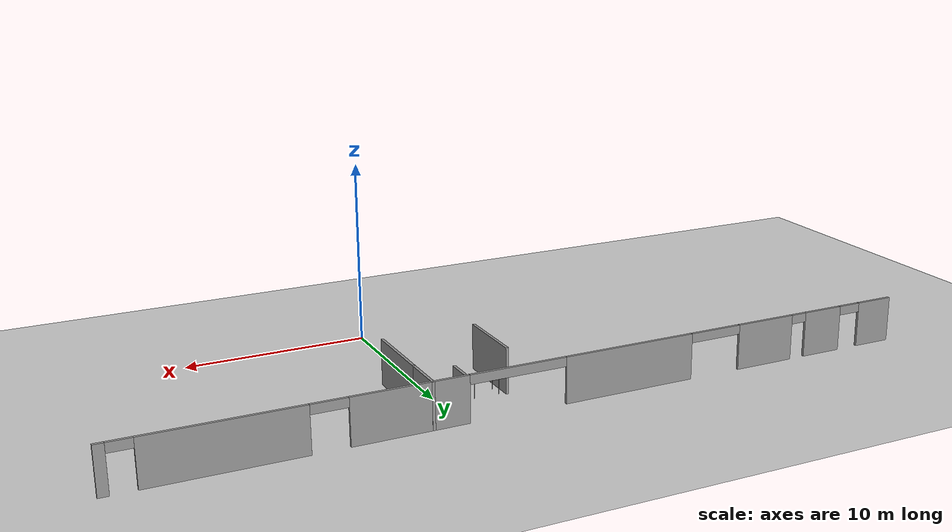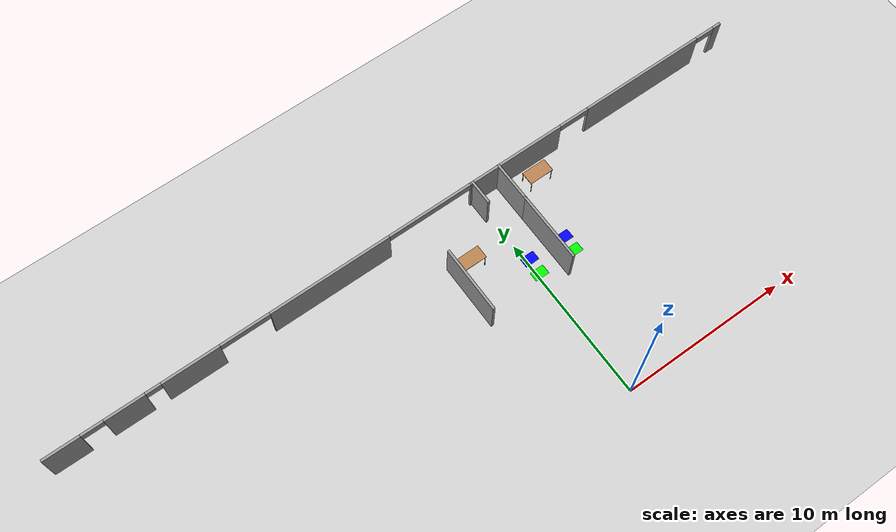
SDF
<sdf version="1.6">
 <world name="default">
  <model name="ground_plane">
   <pose>0 0 0.001 0 -0 0</pose>
   <static>1</static>
   <link name="link">
    <collision name="collision">
     <geometry><plane><normal>0 0 1</normal><size>100 100</size></plane></geometry>
     <surface><friction><ode><mu>100</mu><mu2>50</mu2></ode></friction></surface>
    </collision>
    <visual name="visual">
     <cast_shadows>0</cast_shadows>
     <geometry><plane><normal>0 0 1</normal><size>100 100</size></plane></geometry>
     <material>
      <script><uri>file://media/materials/scripts/gazebo.material</uri><name>Gazebo/Grey</name></script>
     </material>
    </visual>
   </link>
  </model>
  <model name="table_7">
   <static>1</static>
   <link name="link">
    <collision name="surface">
     <pose>0 0 1 0 -0 0</pose>
     <geometry><box><size>1.5 0.8 0.03</size></box></geometry>
     <surface><friction><ode><mu>0.6</mu><mu2>0.6</mu2></ode></friction></surface>
    </collision>
    <visual name="visual1">
     <pose>0 0 1 0 -0 0</pose>
     <geometry><box><size>1.5 0.8 0.03</size></box></geometry>
     <material>
      <script><uri>file://media/materials/scripts/gazebo.material</uri><name>Gazebo/Wood</name></script>
     </material>
    </visual>
    <collision name="front_left_leg">
     <pose>0.68 0.38 0.5 0 -0 0</pose>
     <geometry><cylinder><radius>0.02</radius><length>1</length></cylinder></geometry>
    </collision>
    <visual name="front_left_leg">
     <pose>0.68 0.38 0.5 0 -0 0</pose>
     <geometry><cylinder><radius>0.02</radius><length>1</length></cylinder></geometry>
     <material>
      <script><uri>file://media/materials/scripts/gazebo.material</uri><name>Gazebo/Grey</name></script>
     </material>
    </visual>
    <collision name="front_right_leg">
     <pose>0.68 -0.38 0.5 0 -0 0</pose>
     <geometry><cylinder><radius>0.02</radius><length>1</length></cylinder></geometry>
    </collision>
    <visual name="front_right_leg">
     <pose>0.68 -0.38 0.5 0 -0 0</pose>
     <geometry><cylinder><radius>0.02</radius><length>1</length></cylinder></geometry>
     <material>
      <script><uri>file://media/materials/scripts/gazebo.material</uri><name>Gazebo/Grey</name></script>
     </material>
    </visual>
    <collision name="back_right_leg">
     <pose>-0.68 -0.38 0.5 0 -0 0</pose>
     <geometry><cylinder><radius>0.02</radius><length>1</length></cylinder></geometry>
    </collision>
    <visual name="back_right_leg">
     <pose>-0.68 -0.38 0.5 0 -0 0</pose>
     <geometry><cylinder><radius>0.02</radius><length>1</length></cylinder></geometry>
     <material>
      <script><uri>file://media/materials/scripts/gazebo.material</uri><name>Gazebo/Grey</name></script>
     </material>
    </visual>
    <collision name="back_left_leg">
     <pose>-0.68 0.38 0.5 0 -0 0</pose>
     <geometry><cylinder><radius>0.02</radius><length>1</length></cylinder></geometry>
    </collision>
    <visual name="back_left_leg">
     <pose>-0.68 0.38 0.5 0 -0 0</pose>
     <geometry><cylinder><radius>0.02</radius><length>1</length></cylinder></geometry>
     <material>
      <script><uri>file://media/materials/scripts/gazebo.material</uri><name>Gazebo/Grey</name></script>
     </material>
    </visual>
   </link>
   <pose>-2.6011 10.4538 0.001 0 -0 0</pose>
  </model>
  <model name="table_10">
   <static>1</static>
   <link name="link">
    <collision name="surface">
     <pose>0 0 1 0 -0 0</pose>
     <geometry><box><size>1.5 0.8 0.03</size></box></geometry>
     <surface><friction><ode><mu>0.6</mu><mu2>0.6</mu2></ode></friction></surface>
    </collision>
    <visual name="visual1">
     <pose>0 0 1 0 -0 0</pose>
     <geometry><box><size>1.5 0.8 0.03</size></box></geometry>
     <material>
      <script><uri>file://media/materials/scripts/gazebo.material</uri><name>Gazebo/Wood</name></script>
     </material>
    </visual>
    <collision name="front_left_leg">
     <pose>0.68 0.38 0.5 0 -0 0</pose>
     <geometry><cylinder><radius>0.02</radius><length>1</length></cylinder></geometry>
    </collision>
    <visual name="front_left_leg">
     <pose>0.68 0.38 0.5 0 -0 0</pose>
     <geometry><cylinder><radius>0.02</radius><length>1</length></cylinder></geometry>
     <material>
      <script><uri>file://media/materials/scripts/gazebo.material</uri><name>Gazebo/Grey</name></script>
     </material>
    </visual>
    <collision name="front_right_leg">
     <pose>0.68 -0.38 0.5 0 -0 0</pose>
     <geometry><cylinder><radius>0.02</radius><length>1</length></cylinder></geometry>
    </collision>
    <visual name="front_right_leg">
     <pose>0.68 -0.38 0.5 0 -0 0</pose>
     <geometry><cylinder><radius>0.02</radius><length>1</length></cylinder></geometry>
     <material>
      <script><uri>file://media/materials/scripts/gazebo.material</uri><name>Gazebo/Grey</name></script>
     </material>
    </visual>
    <collision name="back_right_leg">
     <pose>-0.68 -0.38 0.5 0 -0 0</pose>
     <geometry><cylinder><radius>0.02</radius><length>1</length></cylinder></geometry>
    </collision>
    <visual name="back_right_leg">
     <pose>-0.68 -0.38 0.5 0 -0 0</pose>
     <geometry><cylinder><radius>0.02</radius><length>1</length></cylinder></geometry>
     <material>
      <script><uri>file://media/materials/scripts/gazebo.material</uri><name>Gazebo/Grey</name></script>
     </material>
    </visual>
    <collision name="back_left_leg">
     <pose>-0.68 0.38 0.5 0 -0 0</pose>
     <geometry><cylinder><radius>0.02</radius><length>1</length></cylinder></geometry>
    </collision>
    <visual name="back_left_leg">
     <pose>-0.68 0.38 0.5 0 -0 0</pose>
     <geometry><cylinder><radius>0.02</radius><length>1</length></cylinder></geometry>
     <material>
      <script><uri>file://media/materials/scripts/gazebo.material</uri><name>Gazebo/Grey</name></script>
     </material>
    </visual>
   </link>
   <pose>3.46371 12.5183 0.001 0 -0 0</pose>
  </model>
  <model name="intersection_24">
   <link name="link">
    <pose>0 0 0.001 0 -0 0</pose>
    <inertial>
     <mass>0.0352517</mass>
     <inertia>
      <ixx>0.000997067</ixx>
      <ixy>0</ixy>
      <ixz>0</ixz>
      <iyy>0.00220147</iyy>
      <iyz>0</iyz>
      <izz>0.0031692</izz>
     </inertia>
     <pose>0 0 0.001 0 -0 0</pose>
    </inertial>
    <visual name="visual">
     <geometry><box><size>0.862743 0.578289 1e-06</size></box></geometry>
     <material>
      <script><name>Gazebo/Grey</name><uri>file://media/materials/scripts/gazebo.material</uri></script>
      <ambient>0 0 1 1</ambient>
      <diffuse>0 0 1 1</diffuse>
      <specular>0 0 1 1</specular>
      <emissive>0 0 1 1</emissive>
      <shader type="vertex"><normal_map>__default__</normal_map></shader>
     </material>
     <pose>0 0 0.001 0 -0 0</pose>
    </visual>
    <collision name="collision">
     <pose>0 0 0.001 0 -0 0</pose>
     <geometry><box><size>0.862743 0.578289 0.000477</size></box></geometry>
     <surface>
      <friction>
       <ode><mu>1</mu><mu2>1</mu2><fdir1>0 0 0</fdir1><slip1>0</slip1><slip2>0</slip2></ode>
       <torsional>
        <coefficient>1</coefficient>
        <patch_radius>0</patch_radius>
        <surface_radius>0</surface_radius>
        <use_patch_radius>1</use_patch_radius>
        <ode><slip>0</slip></ode>
       </torsional>
      </friction>
      <bounce><restitution_coefficient>0</restitution_coefficient><threshold>1e+06</threshold></bounce>
      <contact>
       <collide_without_contact>0</collide_without_contact>
       <collide_without_contact_bitmask>1</collide_without_contact_bitmask>
       <collide_bitmask>1</collide_bitmask>
       <ode>
        <soft_cfm>0</soft_cfm>
        <soft_erp>0.2</soft_erp>
        <kp>1e+13</kp>
        <kd>1</kd>
        <max_vel>0.01</max_vel>
        <min_depth>0</min_depth>
       </ode>
       <bullet>
        <split_impulse>1</split_impulse>
        <split_impulse_penetration_threshold>-0.01</split_impulse_penetration_threshold>
        <soft_cfm>0</soft_cfm>
        <soft_erp>0.2</soft_erp>
        <kp>1e+13</kp>
        <kd>1</kd>
       </bullet>
      </contact>
     </surface>
    </collision>
   </link>
   <static>1</static>
   <pose>2.55797 8.86954 0 0 -0 0</pose>
  </model>
  <model name="intersection_25">
   <link name="link">
    <pose>0 0 0.001 0 -0 0</pose>
    <inertial>
     <mass>0.0352517</mass>
     <inertia>
      <ixx>0.000997067</ixx>
      <ixy>0</ixy>
      <ixz>0</ixz>
      <iyy>0.00220147</iyy>
      <iyz>0</iyz>
      <izz>0.0031692</izz>
     </inertia>
     <pose>0 0 0.001 0 -0 0</pose>
    </inertial>
    <visual name="visual">
     <geometry><box><size>0.862743 0.578289 1e-06</size></box></geometry>
     <material>
      <script><name>Gazebo/Grey</name><uri>file://media/materials/scripts/gazebo.material</uri></script>
      <ambient>0 0 1 1</ambient>
      <diffuse>0 0 1 1</diffuse>
      <specular>0 0 1 1</specular>
      <emissive>0 0 1 1</emissive>
      <shader type="vertex"><normal_map>__default__</normal_map></shader>
     </material>
     <pose>0 0 0.001 0 -0 0</pose>
    </visual>
    <collision name="collision">
     <pose>0 0 0.001 0 -0 0</pose>
     <geometry><box><size>0.862743 0.578289 0.000477</size></box></geometry>
     <surface>
      <friction>
       <ode><mu>1</mu><mu2>1</mu2><fdir1>0 0 0</fdir1><slip1>0</slip1><slip2>0</slip2></ode>
       <torsional>
        <coefficient>1</coefficient>
        <patch_radius>0</patch_radius>
        <surface_radius>0</surface_radius>
        <use_patch_radius>1</use_patch_radius>
        <ode><slip>0</slip></ode>
       </torsional>
      </friction>
      <bounce><restitution_coefficient>0</restitution_coefficient><threshold>1e+06</threshold></bounce>
      <contact>
       <collide_without_contact>0</collide_without_contact>
       <collide_without_contact_bitmask>1</collide_without_contact_bitmask>
       <collide_bitmask>1</collide_bitmask>
       <ode>
        <soft_cfm>0</soft_cfm>
        <soft_erp>0.2</soft_erp>
        <kp>1e+13</kp>
        <kd>1</kd>
        <max_vel>0.01</max_vel>
        <min_depth>0</min_depth>
       </ode>
       <bullet>
        <split_impulse>1</split_impulse>
        <split_impulse_penetration_threshold>-0.01</split_impulse_penetration_threshold>
        <soft_cfm>0</soft_cfm>
        <soft_erp>0.2</soft_erp>
        <kp>1e+13</kp>
        <kd>1</kd>
       </bullet>
      </contact>
     </surface>
    </collision>
   </link>
   <static>1</static>
   <pose>0.2502 8.92216 0 0 -0 0</pose>
  </model>
  <model name="Se1_cut">
   <pose>3.62364 13.9276 0 0 -0 0</pose>
   <link name="Wall_15">
    <pose>-8.15027 -0.45807 0 0 -0 0</pose>
    <visual name="Wall_15_Visual_0">
     <pose>-20.5479 0 1.25 0 -0 0</pose>
     <geometry><box><size>2.15424 0.15 2.5</size></box></geometry>
     <material>
      <script><uri>file://media/materials/scripts/gazebo.material</uri><name>Gazebo/Grey</name></script>
      <ambient>1 1 1 1</ambient>
     </material>
    </visual>
    <collision name="Wall_15_Collision_0">
     <geometry><box><size>2.15424 0.15 2.5</size></box></geometry>
     <pose>-20.5479 0 1.25 0 -0 0</pose>
    </collision>
    <visual name="Wall_15_Visual_1">
     <pose>-17.0143 0 1.25 0 -0 0</pose>
     <geometry><box><size>2.34337 0.15 2.5</size></box></geometry>
     <material>
      <script><uri>file://media/materials/scripts/gazebo.material</uri><name>Gazebo/Grey</name></script>
      <ambient>1 1 1 1</ambient>
     </material>
    </visual>
    <collision name="Wall_15_Collision_1">
     <geometry><box><size>2.34337 0.15 2.5</size></box></geometry>
     <pose>-17.0143 0 1.25 0 -0 0</pose>
    </collision>
    <visual name="Wall_15_Visual_2">
     <pose>-13.2326 0 1.25 0 -0 0</pose>
     <geometry><box><size>3.42005 0.15 2.5</size></box></geometry>
     <material>
      <script><uri>file://media/materials/scripts/gazebo.material</uri><name>Gazebo/Grey</name></script>
      <ambient>1 1 1 1</ambient>
     </material>
    </visual>
    <collision name="Wall_15_Collision_2">
     <geometry><box><size>3.42005 0.15 2.5</size></box></geometry>
     <pose>-13.2326 0 1.25 0 -0 0</pose>
    </collision>
    <visual name="Wall_15_Visual_3">
     <pose>-4.87122 0 1.25 0 -0 0</pose>
     <geometry><box><size>7.37503 0.15 2.5</size></box></geometry>
     <material>
      <script><uri>file://media/materials/scripts/gazebo.material</uri><name>Gazebo/Grey</name></script>
      <ambient>1 1 1 1</ambient>
     </material>
    </visual>
    <collision name="Wall_15_Collision_3">
     <geometry><box><size>7.37503 0.15 2.5</size></box></geometry>
     <pose>-4.87122 0 1.25 0 -0 0</pose>
    </collision>
    <visual name="Wall_15_Visual_4">
     <pose>7.10743 0 1.25 0 -0 0</pose>
     <geometry><box><size>6.08516 0.15 2.5</size></box></geometry>
     <material>
      <script><uri>file://media/materials/scripts/gazebo.material</uri><name>Gazebo/Grey</name></script>
      <ambient>1 1 1 1</ambient>
     </material>
    </visual>
    <collision name="Wall_15_Collision_4">
     <geometry><box><size>6.08516 0.15 2.5</size></box></geometry>
     <pose>7.10743 0 1.25 0 -0 0</pose>
    </collision>
    <visual name="Wall_15_Visual_5">
     <pose>15.9605 0 1.25 0 -0 0</pose>
     <geometry><box><size>7.83181 0.15 2.5</size></box></geometry>
     <material>
      <script><uri>file://media/materials/scripts/gazebo.material</uri><name>Gazebo/Grey</name></script>
      <ambient>1 1 1 1</ambient>
     </material>
    </visual>
    <collision name="Wall_15_Collision_5">
     <geometry><box><size>7.83181 0.15 2.5</size></box></geometry>
     <pose>15.9605 0 1.25 0 -0 0</pose>
    </collision>
    <visual name="Wall_15_Visual_6">
     <pose>21.3626 0 1.25 0 -0 0</pose>
     <geometry><box><size>0.524744 0.15 2.5</size></box></geometry>
     <material>
      <script><uri>file://media/materials/scripts/gazebo.material</uri><name>Gazebo/Grey</name></script>
      <ambient>1 1 1 1</ambient>
     </material>
    </visual>
    <collision name="Wall_15_Collision_6">
     <geometry><box><size>0.524744 0.15 2.5</size></box></geometry>
     <pose>21.3626 0 1.25 0 -0 0</pose>
    </collision>
    <visual name="Wall_15_Visual_7">
     <pose>-18.8284 0 2.25 0 -0 0</pose>
     <geometry><box><size>1.28478 0.15 0.5</size></box></geometry>
     <material>
      <script><uri>file://media/materials/scripts/gazebo.material</uri><name>Gazebo/Grey</name></script>
      <ambient>1 1 1 1</ambient>
     </material>
    </visual>
    <collision name="Wall_15_Collision_7">
     <geometry><box><size>1.28478 0.15 0.5</size></box></geometry>
     <pose>-18.8284 0 2.25 0 -0 0</pose>
    </collision>
    <visual name="Wall_15_Visual_8">
     <pose>-15.3926 0 2.25 0 -0 0</pose>
     <geometry><box><size>0.9 0.15 0.5</size></box></geometry>
     <material>
      <script><uri>file://media/materials/scripts/gazebo.material</uri><name>Gazebo/Grey</name></script>
      <ambient>1 1 1 1</ambient>
     </material>
    </visual>
    <collision name="Wall_15_Collision_8">
     <geometry><box><size>0.9 0.15 0.5</size></box></geometry>
     <pose>-15.3926 0 2.25 0 -0 0</pose>
    </collision>
    <visual name="Wall_15_Visual_9">
     <pose>-10.0406 0 2.25 0 -0 0</pose>
     <geometry><box><size>2.96383 0.15 0.5</size></box></geometry>
     <material>
      <script><uri>file://media/materials/scripts/gazebo.material</uri><name>Gazebo/Grey</name></script>
      <ambient>1 1 1 1</ambient>
     </material>
    </visual>
    <collision name="Wall_15_Collision_9">
     <geometry><box><size>2.96383 0.15 0.5</size></box></geometry>
     <pose>-10.0406 0 2.25 0 -0 0</pose>
    </collision>
    <visual name="Wall_15_Visual_10">
     <pose>1.44057 0 2.25 0 -0 0</pose>
     <geometry><box><size>5.24855 0.15 0.5</size></box></geometry>
     <material>
      <script><uri>file://media/materials/scripts/gazebo.material</uri><name>Gazebo/Grey</name></script>
      <ambient>1 1 1 1</ambient>
     </material>
    </visual>
    <collision name="Wall_15_Collision_10">
     <geometry><box><size>5.24855 0.15 0.5</size></box></geometry>
     <pose>1.44057 0 2.25 0 -0 0</pose>
    </collision>
    <visual name="Wall_15_Visual_11">
     <pose>11.0973 0 2.25 0 -0 0</pose>
     <geometry><box><size>1.89462 0.15 0.5</size></box></geometry>
     <material>
      <script><uri>file://media/materials/scripts/gazebo.material</uri><name>Gazebo/Grey</name></script>
      <ambient>1 1 1 1</ambient>
     </material>
    </visual>
    <collision name="Wall_15_Collision_11">
     <geometry><box><size>1.89462 0.15 0.5</size></box></geometry>
     <pose>11.0973 0 2.25 0 -0 0</pose>
    </collision>
    <visual name="Wall_15_Visual_12">
     <pose>20.4883 0 2.25 0 -0 0</pose>
     <geometry><box><size>1.22383 0.15 0.5</size></box></geometry>
     <material>
      <script><uri>file://media/materials/scripts/gazebo.material</uri><name>Gazebo/Grey</name></script>
      <ambient>1 1 1 1</ambient>
     </material>
    </visual>
    <collision name="Wall_15_Collision_12">
     <geometry><box><size>1.22383 0.15 0.5</size></box></geometry>
     <pose>20.4883 0 2.25 0 -0 0</pose>
    </collision>
   </link>
   <link name="Wall_33">
    <collision name="Wall_33_Collision">
     <geometry><box><size>1.5 0.15 2.5</size></box></geometry>
     <pose>0 0 1.25 0 -0 0</pose>
    </collision>
    <visual name="Wall_33_Visual">
     <pose>0 0 1.25 0 -0 0</pose>
     <geometry><box><size>1.5 0.15 2.5</size></box></geometry>
     <material>
      <script><uri>file://media/materials/scripts/gazebo.material</uri><name>Gazebo/Grey</name></script>
      <ambient>1 1 1 1</ambient>
     </material>
    </visual>
    <pose>-3.911 -1.13352 0 0 0 -1.5708</pose>
   </link>
   <link name="Wall_35">
    <collision name="Wall_35_Collision">
     <geometry><box><size>2.5 0.15 2.5</size></box></geometry>
     <pose>0 0 1.25 0 -0 0</pose>
    </collision>
    <visual name="Wall_35_Visual">
     <pose>0 0 1.25 0 -0 0</pose>
     <geometry><box><size>2.5 0.15 2.5</size></box></geometry>
     <material>
      <script><uri>file://media/materials/scripts/gazebo.material</uri><name>Gazebo/Grey</name></script>
      <ambient>1 1 1 1</ambient>
     </material>
    </visual>
    <pose>-2.181 -1.62352 0 0 0 -1.5708</pose>
   </link>
   <link name="Wall_93">
    <collision name="Wall_93_Collision">
     <geometry><box><size>4 0.15 2.5</size></box></geometry>
     <pose>0 0 1.25 0 -0 0</pose>
    </collision>
    <visual name="Wall_93_Visual">
     <pose>0 0 1.25 0 -0 0</pose>
     <geometry><box><size>4 0.15 2.5</size></box></geometry>
     <material>
      <script><uri>file://media/materials/scripts/gazebo.material</uri><name>Gazebo/Grey</name></script>
      <ambient>1 1 1 1</ambient>
     </material>
    </visual>
    <pose>-7.29761 -4.91186 0 0 0 -1.5708</pose>
   </link>
   <link name="Wall_95">
    <collision name="Wall_95_Collision">
     <geometry><box><size>4.25 0.15 2.5</size></box></geometry>
     <pose>0 0 1.25 0 -0 0</pose>
    </collision>
    <visual name="Wall_95_Visual">
     <pose>0 0 1.25 0 -0 0</pose>
     <geometry><box><size>4.25 0.15 2.5</size></box></geometry>
     <material>
      <script><uri>file://media/materials/scripts/gazebo.material</uri><name>Gazebo/Grey</name></script>
      <ambient>1 1 1 1</ambient>
     </material>
    </visual>
    <pose>-2.181 -4.84852 0 0 0 -1.5708</pose>
   </link>
   <static>1</static>
  </model>
  <model name="corridor_0_clone_5">
   <link name="link">
    <pose>0 0 0.001 0 -0 0</pose>
    <inertial>
     <mass>0.0352517</mass>
     <inertia>
      <ixx>0.00099707</ixx>
      <ixy>0</ixy>
      <ixz>0</ixz>
      <iyy>0.00220147</iyy>
      <iyz>0</iyz>
      <izz>0.0031692</izz>
     </inertia>
     <pose>0 0 0.001 0 -0 0</pose>
    </inertial>
    <visual name="visual">
     <geometry><box><size>0.862743 0.578289 1e-06</size></box></geometry>
     <material>
      <script><name>Gazebo/Grey</name><uri>file://media/materials/scripts/gazebo.material</uri></script>
      <ambient>0 1 0 1</ambient>
      <diffuse>0 1 0 1</diffuse>
      <specular>0 1 0 1</specular>
      <emissive>0 1 0 1</emissive>
      <shader type="vertex"><normal_map>__default__</normal_map></shader>
     </material>
     <pose>0 0 0.001 0 -0 0</pose>
    </visual>
    <collision name="collision">
     <pose>0 0 0.001 0 -0 0</pose>
     <geometry><box><size>0.862743 0.578289 0.000477</size></box></geometry>
     <surface>
      <friction>
       <ode><mu>1</mu><mu2>1</mu2><fdir1>0 0 0</fdir1><slip1>0</slip1><slip2>0</slip2></ode>
       <torsional>
        <coefficient>1</coefficient>
        <patch_radius>0</patch_radius>
        <surface_radius>0</surface_radius>
        <use_patch_radius>1</use_patch_radius>
        <ode><slip>0</slip></ode>
       </torsional>
      </friction>
      <bounce><restitution_coefficient>0</restitution_coefficient><threshold>1e+06</threshold></bounce>
      <contact>
       <collide_without_contact>0</collide_without_contact>
       <collide_without_contact_bitmask>1</collide_without_contact_bitmask>
       <collide_bitmask>1</collide_bitmask>
       <ode>
        <soft_cfm>0</soft_cfm>
        <soft_erp>0.2</soft_erp>
        <kp>1e+13</kp>
        <kd>1</kd>
        <max_vel>0.01</max_vel>
        <min_depth>0</min_depth>
       </ode>
       <bullet>
        <split_impulse>1</split_impulse>
        <split_impulse_penetration_threshold>-0.01</split_impulse_penetration_threshold>
        <soft_cfm>0</soft_cfm>
        <soft_erp>0.2</soft_erp>
        <kp>1e+13</kp>
        <kd>1</kd>
       </bullet>
      </contact>
     </surface>
    </collision>
   </link>
   <static>1</static>
   <pose>0.187659 7.96076 0 0 -0 0</pose>
  </model>
  <model name="corridor_0_clone_6">
   <link name="link">
    <pose>0 0 0.001 0 -0 0</pose>
    <inertial>
     <mass>0.0352517</mass>
     <inertia>
      <ixx>0.00099707</ixx>
      <ixy>0</ixy>
      <ixz>0</ixz>
      <iyy>0.00220147</iyy>
      <iyz>0</iyz>
      <izz>0.0031692</izz>
     </inertia>
     <pose>0 0 0.001 0 -0 0</pose>
    </inertial>
    <visual name="visual">
     <geometry><box><size>0.862743 0.578289 1e-06</size></box></geometry>
     <material>
      <script><name>Gazebo/Grey</name><uri>file://media/materials/scripts/gazebo.material</uri></script>
      <ambient>0 1 0 1</ambient>
      <diffuse>0 1 0 1</diffuse>
      <specular>0 1 0 1</specular>
      <emissive>0 1 0 1</emissive>
      <shader type="vertex"><normal_map>__default__</normal_map></shader>
     </material>
     <pose>0 0 0.001 0 -0 0</pose>
    </visual>
    <collision name="collision">
     <pose>0 0 0.001 0 -0 0</pose>
     <geometry><box><size>0.862743 0.578289 0.000477</size></box></geometry>
     <surface>
      <friction>
       <ode><mu>1</mu><mu2>1</mu2><fdir1>0 0 0</fdir1><slip1>0</slip1><slip2>0</slip2></ode>
       <torsional>
        <coefficient>1</coefficient>
        <patch_radius>0</patch_radius>
        <surface_radius>0</surface_radius>
        <use_patch_radius>1</use_patch_radius>
        <ode><slip>0</slip></ode>
       </torsional>
      </friction>
      <bounce><restitution_coefficient>0</restitution_coefficient><threshold>1e+06</threshold></bounce>
      <contact>
       <collide_without_contact>0</collide_without_contact>
       <collide_without_contact_bitmask>1</collide_without_contact_bitmask>
       <collide_bitmask>1</collide_bitmask>
       <ode>
        <soft_cfm>0</soft_cfm>
        <soft_erp>0.2</soft_erp>
        <kp>1e+13</kp>
        <kd>1</kd>
        <max_vel>0.01</max_vel>
        <min_depth>0</min_depth>
       </ode>
       <bullet>
        <split_impulse>1</split_impulse>
        <split_impulse_penetration_threshold>-0.01</split_impulse_penetration_threshold>
        <soft_cfm>0</soft_cfm>
        <soft_erp>0.2</soft_erp>
        <kp>1e+13</kp>
        <kd>1</kd>
       </bullet>
      </contact>
     </surface>
    </collision>
   </link>
   <static>1</static>
   <pose>2.52101 7.95657 0 0 -0 0</pose>
  </model>
 </world>
</sdf>
